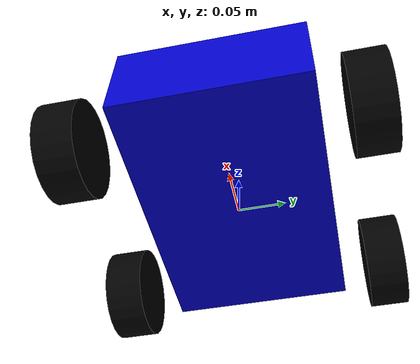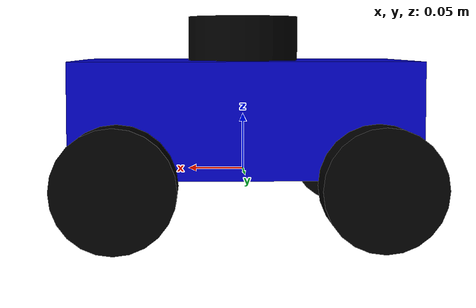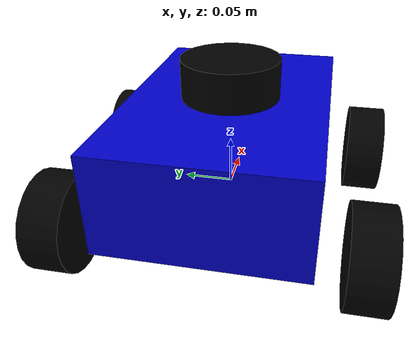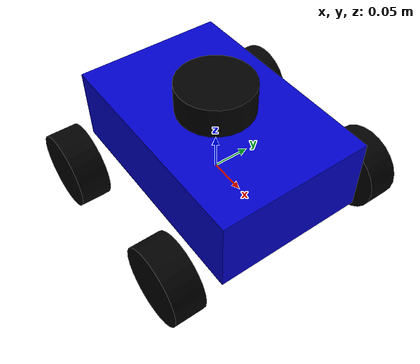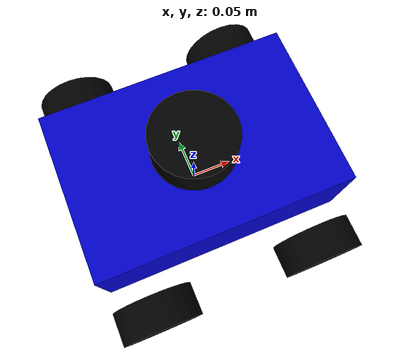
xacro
<?xml version="1.0"?>
<robot name="ackermann_robot" xmlns:xacro="http://www.ros.org/wiki/xacro">

  <!-- 全局属性 -->
  <xacro:property name="wheelbase" value="0.21333" />
  <xacro:property name="track_width" value="0.29148" />
  <xacro:property name="wheel_radius" value="0.05" />
  <xacro:property name="wheel_width" value="0.04" />
  <xacro:property name="max_steer_angle" value="0.6" />

  <!-- 底色 -->
  <material name="black">
    <color rgba="0.0 0.0 0.0 1.0"/>
  </material>
  <material name="blue">
    <color rgba="0.0 0.0 0.8 1.0"/>
  </material>
  <material name="red">
    <color rgba="0.8 0.0 0.0 1.0"/>
  </material>

  <!-- 底盘 -->
  <link name="base_link">
    <visual>
      <geometry>
        <box size="0.3 0.2 0.1"/>
      </geometry>
      <material name="blue"/>
      <origin xyz="0 0 0.05" rpy="0 0 0"/>
    </visual>
    <collision>
      <geometry>
        <box size="0.3 0.2 0.1"/>
      </geometry>
      <origin xyz="0 0 0.05" rpy="0 0 0"/>
    </collision>
    <inertial>
      <mass value="5.0"/>
      <inertia ixx="0.1" ixy="0" ixz="0" iyy="0.1" iyz="0" izz="0.1"/>
      <origin xyz="0 0 0.05" rpy="0 0 0"/>
    </inertial>
  </link>

  <!-- 雷达链接 -->
  <link name="lidar_link">
    <visual>
      <geometry>
        <cylinder radius="0.05" length="0.04"/>
      </geometry>
      <material name="black"/>
      <origin xyz="0 0 0.02" rpy="0 0 0"/>
    </visual>
    <collision>
      <geometry>
        <cylinder radius="0.05" length="0.04"/>
      </geometry>
      <origin xyz="0 0 0.02" rpy="0 0 0"/>
    </collision>
    <inertial>
      <mass value="0.1"/>
      <inertia ixx="0.001" ixy="0" ixz="0" iyy="0.001" iyz="0" izz="0.001"/>
      <origin xyz="0 0 0.02" rpy="0 0 0"/>
    </inertial>
  </link>

  <joint name="lidar_joint" type="fixed">
    <parent link="base_link"/>
    <child link="lidar_link"/>
    <origin xyz="0 0 0.1" rpy="0 0 0"/>
  </joint>

  <!-- 前轮转向关节 -->
  <link name="front_steer_link">
    <inertial>
      <mass value="0.1"/>
      <inertia ixx="0.001" ixy="0" ixz="0" iyy="0.001" iyz="0" izz="0.001"/>
      <origin xyz="0 0 0" rpy="0 0 0"/>
    </inertial>
  </link>

  <joint name="front_steer_joint" type="revolute">
    <parent link="base_link"/>
    <child link="front_steer_link"/>
    <origin xyz="${wheelbase/2} 0 0" rpy="0 0 0"/>
    <axis xyz="0 0 1"/>
    <limit lower="${-max_steer_angle}" upper="${max_steer_angle}" effort="10" velocity="1"/>
  </joint>

  <!-- 前左轮 -->
  <link name="front_left_wheel_link">
    <visual>
      <geometry>
        <cylinder radius="${wheel_radius}" length="${wheel_width}"/>
      </geometry>
      <material name="black"/>
      <origin xyz="0 0 0" rpy="${pi/2} 0 0"/>
    </visual>
    <collision>
      <geometry>
        <cylinder radius="${wheel_radius}" length="${wheel_width}"/>
      </geometry>
      <origin xyz="0 0 0" rpy="${pi/2} 0 0"/>
    </collision>
    <inertial>
      <mass value="0.5"/>
      <inertia ixx="0.01" ixy="0" ixz="0" iyy="0.01" iyz="0" izz="0.01"/>
      <origin xyz="0 0 0" rpy="${pi/2} 0 0"/>
    </inertial>
  </link>

  <joint name="front_left_wheel_joint" type="continuous">
    <parent link="front_steer_link"/>
    <child link="front_left_wheel_link"/>
    <origin xyz="0 ${track_width/2} 0" rpy="0 0 0"/>
    <axis xyz="0 1 0"/>
  </joint>

  <!-- 前右轮 -->
  <link name="front_right_wheel_link">
    <visual>
      <geometry>
        <cylinder radius="${wheel_radius}" length="${wheel_width}"/>
      </geometry>
      <material name="black"/>
      <origin xyz="0 0 0" rpy="${pi/2} 0 0"/>
    </visual>
    <collision>
      <geometry>
        <cylinder radius="${wheel_radius}" length="${wheel_width}"/>
      </geometry>
      <origin xyz="0 0 0" rpy="${pi/2} 0 0"/>
    </collision>
    <inertial>
      <mass value="0.5"/>
      <inertia ixx="0.01" ixy="0" ixz="0" iyy="0.01" iyz="0" izz="0.01"/>
      <origin xyz="0 0 0" rpy="${pi/2} 0 0"/>
    </inertial>
  </link>

  <joint name="front_right_wheel_joint" type="continuous">
    <parent link="front_steer_link"/>
    <child link="front_right_wheel_link"/>
    <origin xyz="0 ${-track_width/2} 0" rpy="0 0 0"/>
    <axis xyz="0 1 0"/>
  </joint>

  <!-- 后左轮 -->
  <link name="rear_left_wheel_link">
    <visual>
      <geometry>
        <cylinder radius="${wheel_radius}" length="${wheel_width}"/>
      </geometry>
      <material name="black"/>
      <origin xyz="0 0 0" rpy="${pi/2} 0 0"/>
    </visual>
    <collision>
      <geometry>
        <cylinder radius="${wheel_radius}" length="${wheel_width}"/>
      </geometry>
      <origin xyz="0 0 0" rpy="${pi/2} 0 0"/>
    </collision>
    <inertial>
      <mass value="0.5"/>
      <inertia ixx="0.01" ixy="0" ixz="0" iyy="0.01" iyz="0" izz="0.01"/>
      <origin xyz="0 0 0" rpy="${pi/2} 0 0"/>
    </inertial>
  </link>

  <joint name="rear_left_wheel_joint" type="continuous">
    <parent link="base_link"/>
    <child link="rear_left_wheel_link"/>
    <origin xyz="${-wheelbase/2} ${track_width/2} 0" rpy="0 0 0"/>
    <axis xyz="0 1 0"/>
  </joint>

  <!-- 后右轮 -->
  <link name="rear_right_wheel_link">
    <visual>
      <geometry>
        <cylinder radius="${wheel_radius}" length="${wheel_width}"/>
      </geometry>
      <material name="black"/>
      <origin xyz="0 0 0" rpy="${pi/2} 0 0"/>
    </visual>
    <collision>
      <geometry>
        <cylinder radius="${wheel_radius}" length="${wheel_width}"/>
      </geometry>
      <origin xyz="0 0 0" rpy="${pi/2} 0 0"/>
    </collision>
    <inertial>
      <mass value="0.5"/>
      <inertia ixx="0.01" ixy="0" ixz="0" iyy="0.01" iyz="0" izz="0.01"/>
      <origin xyz="0 0 0" rpy="${pi/2} 0 0"/>
    </inertial>
  </link>

  <joint name="rear_right_wheel_joint" type="continuous">
    <parent link="base_link"/>
    <child link="rear_right_wheel_link"/>
    <origin xyz="${-wheelbase/2} ${-track_width/2} 0" rpy="0 0 0"/>
    <axis xyz="0 1 0"/>
  </joint>

  <!-- Gazebo相关插件和属性 (根据需要添加) -->

</robot>
